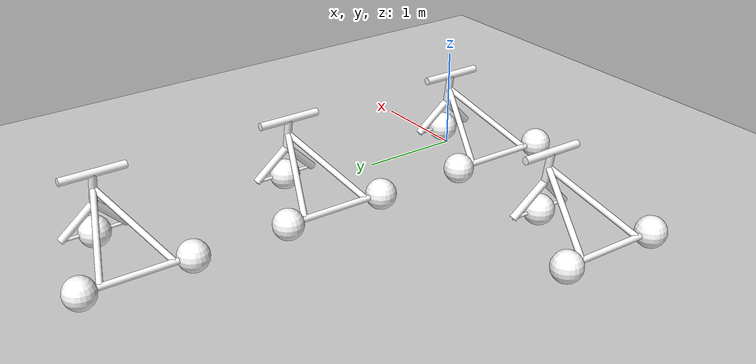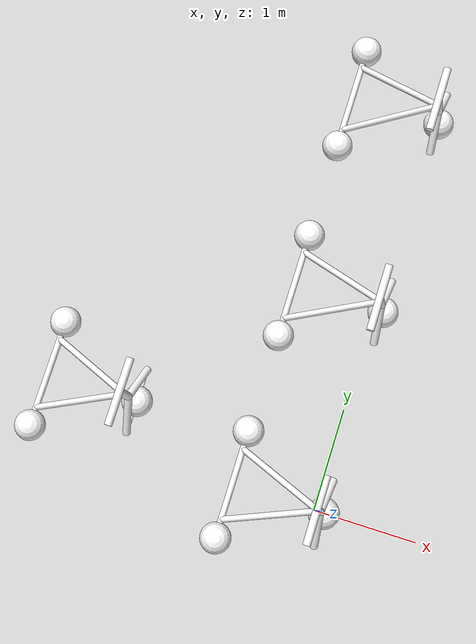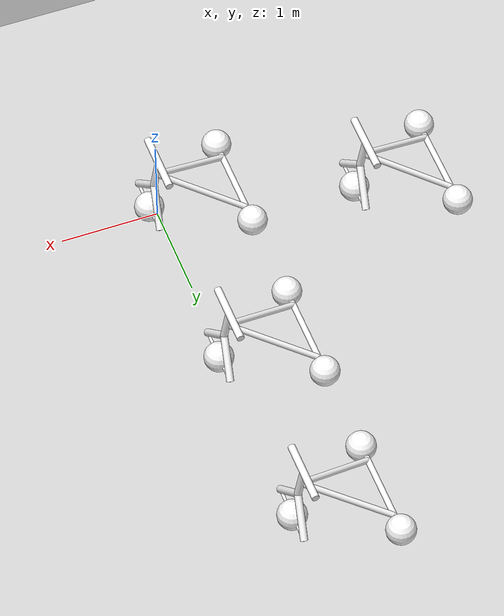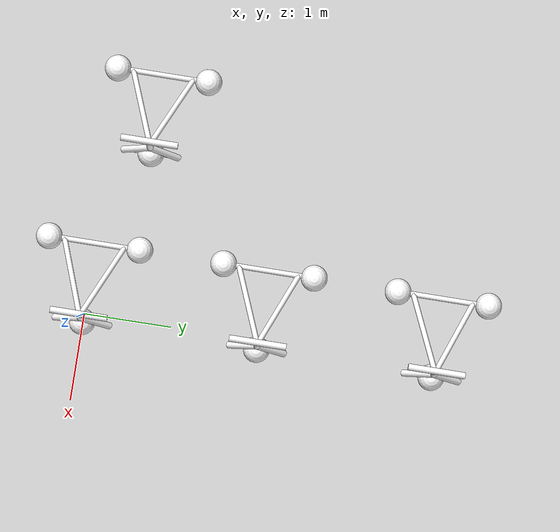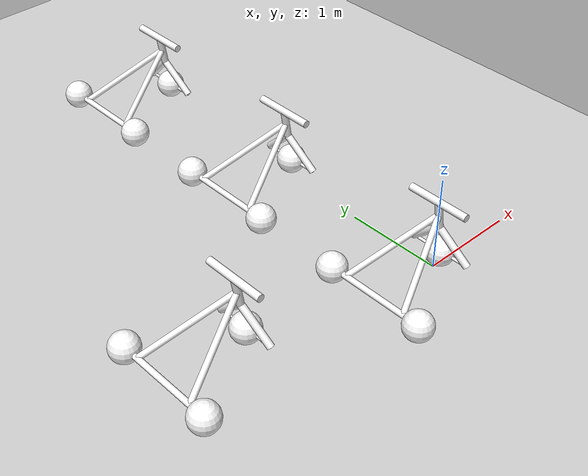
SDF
<?xml version="1.0" ?>

<sdf version="1.6">
  <world name="default">
    <gravity>-2 0 -9.8</gravity>

    <include>
      <uri>model://ground_plane</uri>
    </include>
    <include>
      <uri>model://sun</uri>
    </include>

    <include>
      <uri>model://trisphere_cycle</uri>
      <name>trisphere_cycle_slip0</name>
      <pose>0 0 0  0 0 0</pose>
      <plugin name="wheel_slip" filename="libWheelSlipPlugin.so">
        <wheel link_name="wheel_front">
          <slip_compliance_lateral>0</slip_compliance_lateral>
          <slip_compliance_longitudinal>0</slip_compliance_longitudinal>
          <wheel_normal_force>77</wheel_normal_force>
        </wheel>
        <wheel link_name="wheel_rear_left">
          <slip_compliance_lateral>0</slip_compliance_lateral>
          <slip_compliance_longitudinal>0</slip_compliance_longitudinal>
          <wheel_normal_force>32</wheel_normal_force>
        </wheel>
        <wheel link_name="wheel_rear_right">
          <slip_compliance_lateral>0</slip_compliance_lateral>
          <slip_compliance_longitudinal>0</slip_compliance_longitudinal>
          <wheel_normal_force>32</wheel_normal_force>
        </wheel>
      </plugin>
      <plugin name="joint_control" filename="libJointControlPlugin.so">
        <controller type="position">
          <joint>wheel_front_steer</joint>
          <target>0</target>
          <pid_gains>9 0 0.1</pid_gains>
        </controller>
        <controller type="velocity">
          <joint>wheel_rear_left_spin</joint>
          <joint>wheel_rear_right_spin</joint>
          <target>6.0</target>
          <pid_gains>9 0 0</pid_gains>
        </controller>
        <controller type="force">
          <joint>wheel_rear_left_spin</joint>
          <joint>wheel_rear_right_spin</joint>
          <target>2.15</target>
        </controller>
      </plugin>
    </include>

    <include>
      <uri>model://trisphere_cycle</uri>
      <name>trisphere_cycle_spatial_slip0</name>
      <pose>-2 0.47 0 0  0 0 0</pose>
      <plugin name="wheel_slip" filename="libSpatialWheelSlipPlugin.so">
        <wheel link_name="wheel_front">
          <slip_compliance_lateral>0</slip_compliance_lateral>
          <slip_compliance_longitudinal>0</slip_compliance_longitudinal>
          <wheel_normal_force>77</wheel_normal_force>
        </wheel>
        <wheel link_name="wheel_rear_left">
          <slip_compliance_lateral>0</slip_compliance_lateral>
          <slip_compliance_longitudinal>0</slip_compliance_longitudinal>
          <wheel_normal_force>32</wheel_normal_force>
        </wheel>
        <wheel link_name="wheel_rear_right">
          <slip_compliance_lateral>0</slip_compliance_lateral>
          <slip_compliance_longitudinal>0</slip_compliance_longitudinal>
          <wheel_normal_force>32</wheel_normal_force>
        </wheel>
      </plugin>
      <plugin name="joint_control" filename="libJointControlPlugin.so">
        <controller type="position">
          <joint>wheel_front_steer</joint>
          <target>0</target>
          <pid_gains>9 0 0.1</pid_gains>
        </controller>
        <controller type="velocity">
          <joint>wheel_rear_left_spin</joint>
          <joint>wheel_rear_right_spin</joint>
          <target>6.0</target>
          <pid_gains>9 0 0</pid_gains>
        </controller>
        <controller type="force">
          <joint>wheel_rear_left_spin</joint>
          <joint>wheel_rear_right_spin</joint>
          <target>2.15</target>
        </controller>
      </plugin>
    </include>

    <include>
      <uri>model://trisphere_cycle</uri>
      <name>trisphere_cycle_slip1</name>
      <pose>0 2 0  0 0 0</pose>
      <plugin name="wheel_slip" filename="libWheelSlipPlugin.so">
        <wheel link_name="wheel_front">
          <slip_compliance_lateral>1</slip_compliance_lateral>
          <slip_compliance_longitudinal>1</slip_compliance_longitudinal>
          <wheel_normal_force>77</wheel_normal_force>
        </wheel>
        <wheel link_name="wheel_rear_left">
          <slip_compliance_lateral>1</slip_compliance_lateral>
          <slip_compliance_longitudinal>1</slip_compliance_longitudinal>
          <wheel_normal_force>32</wheel_normal_force>
        </wheel>
        <wheel link_name="wheel_rear_right">
          <slip_compliance_lateral>1</slip_compliance_lateral>
          <slip_compliance_longitudinal>1</slip_compliance_longitudinal>
          <wheel_normal_force>32</wheel_normal_force>
        </wheel>
      </plugin>
      <plugin name="joint_control" filename="libJointControlPlugin.so">
        <controller type="position">
          <joint>wheel_front_steer</joint>
          <target>0</target>
          <pid_gains>9 0 0.1</pid_gains>
        </controller>
        <controller type="velocity">
          <joint>wheel_rear_left_spin</joint>
          <joint>wheel_rear_right_spin</joint>
          <target>6.0</target>
          <pid_gains>9 0 0</pid_gains>
        </controller>
        <controller type="force">
          <joint>wheel_rear_left_spin</joint>
          <joint>wheel_rear_right_spin</joint>
          <target>2.15</target>
        </controller>
      </plugin>
    </include>

    <include>
      <uri>model://trisphere_cycle</uri>
      <name>trisphere_cycle_spatial_slip1</name>
      <pose>0 4 0  0 0 0</pose>
      <plugin name="wheel_slip" filename="libSpatialWheelSlipPlugin.so">
        <wheel link_name="wheel_front">
          <slip_compliance_lateral>1</slip_compliance_lateral>
          <slip_compliance_longitudinal>1</slip_compliance_longitudinal>
          <wheel_normal_force>77</wheel_normal_force>
        </wheel>
        <wheel link_name="wheel_rear_left">
          <slip_compliance_lateral>1</slip_compliance_lateral>
          <slip_compliance_longitudinal>1</slip_compliance_longitudinal>
          <wheel_normal_force>32</wheel_normal_force>
        </wheel>
        <wheel link_name="wheel_rear_right">
          <slip_compliance_lateral>1</slip_compliance_lateral>
          <slip_compliance_longitudinal>1</slip_compliance_longitudinal>
          <wheel_normal_force>32</wheel_normal_force>
        </wheel>
      </plugin>
      <plugin name="joint_control" filename="libJointControlPlugin.so">
        <controller type="position">
          <joint>wheel_front_steer</joint>
          <target>0</target>
          <pid_gains>9 0 0.1</pid_gains>
        </controller>
        <controller type="velocity">
          <joint>wheel_rear_left_spin</joint>
          <joint>wheel_rear_right_spin</joint>
          <target>6.0</target>
          <pid_gains>9 0 0</pid_gains>
        </controller>
        <controller type="force">
          <joint>wheel_rear_left_spin</joint>
          <joint>wheel_rear_right_spin</joint>
          <target>2.15</target>
        </controller>
      </plugin>
    </include>

    <gui fullscreen='0'>
      <camera name='user_camera'>
        <pose>1.5 -4 2.5  0 0.5 1.6</pose>
        <view_controller>orbit</view_controller>
      </camera>
    </gui>
  </world>
</sdf>

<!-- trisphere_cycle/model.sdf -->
<sdf version="1.6">
  <model name="trisphere_cycle">
    <link name="frame">
      <pose>-0.40855911616047164 0 0.38502293110800634  0 -0.522020852957719 0</pose>
      <inertial>
        <pose>0.0 0 0  0 0 0</pose>
        <mass>10</mass>
        <inertia>
          <ixx>0.22799999999999998</ixx>
          <iyy>0.7435210984814149</iyy>
          <izz>0.9655210984814149</izz>
          <ixy>0</ixy>
          <ixz>0</ixz>
          <iyz>0</iyz>
        </inertia>
      </inertial>
      <collision name="axle_collision">
        <pose>-0.4713346258704366 0 0  1.5707963267948966 0 0</pose>
        <geometry>
          <cylinder>
            <length>1.0392304845413263</length>
            <radius>0.03</radius>
          </cylinder>
        </geometry>
      </collision>
      <visual name="axle_visual">
        <pose>-0.4713346258704366 0 0  1.5707963267948966 0 0</pose>
        <geometry>
          <cylinder>
            <length>1.0392304845413263</length>
            <radius>0.03</radius>
          </cylinder>
        </geometry>
        <material><diffuse>1 1 1 1</diffuse><specular>0.1 0.1 0.1 1</specular></material>
      </visual>
      <collision name="frame_left_collision">
        <pose>0 0.17155177419583564 0  0 1.5707963267948966 -0.3490658503988659</pose>
        <geometry>
          <cylinder>
            <length>1.0031676644991372</length>
            <radius>0.03</radius>
          </cylinder>
        </geometry>
      </collision>
      <visual name="frame_left_visual">
        <pose>0 0.17155177419583564 0  0 1.5707963267948966 -0.3490658503988659</pose>
        <geometry>
          <cylinder>
            <length>1.0031676644991372</length>
            <radius>0.03</radius>
          </cylinder>
        </geometry>
        <material><diffuse>1 1 1 1</diffuse><specular>0.1 0.1 0.1 1</specular></material>
      </visual>
      <collision name="frame_right_collision">
        <pose>0 -0.17155177419583564 0  0 1.5707963267948966 0.3490658503988659</pose>
        <geometry>
          <cylinder>
            <length>1.0031676644991372</length>
            <radius>0.03</radius>
          </cylinder>
        </geometry>
      </collision>
      <visual name="frame_right_visual">
        <pose>0 -0.17155177419583564 0  0 1.5707963267948966 0.3490658503988659</pose>
        <geometry>
          <cylinder>
            <length>1.0031676644991372</length>
            <radius>0.03</radius>
          </cylinder>
        </geometry>
        <material><diffuse>1 1 1 1</diffuse><specular>0.1 0.1 0.1 1</specular></material>
      </visual>
    </link>
    <link name="fork">
      <pose>0.04144088383952833 0 0.38502293110800634  0 -0.17453292519943295 0</pose>
      <inertial>
        <mass>3</mass>
        <inertia>
          <ixx>0.15820312499999997</ixx>
          <iyy>0.058359374999999984</iyy>
          <izz>0.10265624999999999</izz>
          <ixy>0</ixy>
          <ixz>0</ixz>
          <iyz>0</iyz>
        </inertia>
      </inertial>
      <collision name="handlebars_collision">
        <pose>0 0 0.397747564417433  1.5707963267948966 0 0</pose>
        <geometry>
          <cylinder>
            <length>0.6363961030678927</length>
            <radius>0.0375</radius>
          </cylinder>
        </geometry>
      </collision>
      <visual name="handlebars_visual">
        <pose>0 0 0.397747564417433  1.5707963267948966 0 0</pose>
        <geometry>
          <cylinder>
            <length>0.6363961030678927</length>
            <radius>0.0375</radius>
          </cylinder>
        </geometry>
        <material><diffuse>1 1 1 1</diffuse><specular>0.1 0.1 0.1 1</specular></material>
      </visual>
      <collision name="headtube_collision">
        <pose>0 0 0.2386485386504598  0 0 0</pose>
        <geometry>
          <cylinder>
            <length>0.31819805153394637</length>
            <radius>0.0375</radius>
          </cylinder>
        </geometry>
      </collision>
      <visual name="headtube_visual">
        <pose>0 0 0.2386485386504598  0 0 0</pose>
        <geometry>
          <cylinder>
            <length>0.31819805153394637</length>
            <radius>0.0375</radius>
          </cylinder>
        </geometry>
        <material><diffuse>1 1 1 1</diffuse><specular>0.1 0.1 0.1 1</specular></material>
      </visual>
      <collision name="spindle_collision">
        <pose>0 0 -0.23864853865045976  1.5707963267948966 0 0</pose>
        <geometry>
          <cylinder>
            <length>0.6363961030678927</length>
            <radius>0.015</radius>
          </cylinder>
        </geometry>
      </collision>
      <visual name="spindle_visual">
        <pose>0 0 -0.23864853865045976  1.5707963267948966 0 0</pose>
        <geometry>
          <cylinder>
            <length>0.6363961030678927</length>
            <radius>0.015</radius>
          </cylinder>
        </geometry>
        <material><diffuse>1 1 1 1</diffuse><specular>0.1 0.1 0.1 1</specular></material>
      </visual>
      <collision name="fork_left_collision">
        <pose>0 0.15909902576697318 -0.07954951288348658  0.7853981633974483 0 0</pose>
        <geometry>
          <cylinder>
            <length>0.45</length>
            <radius>0.0375</radius>
          </cylinder>
        </geometry>
      </collision>
      <visual name="fork_left_visual">
        <pose>0 0.15909902576697318 -0.07954951288348658  0.7853981633974483 0 0</pose>
        <geometry>
          <cylinder>
            <length>0.45</length>
            <radius>0.0375</radius>
          </cylinder>
        </geometry>
        <material><diffuse>1 1 1 1</diffuse><specular>0.1 0.1 0.1 1</specular></material>
      </visual>
      <collision name="fork_right_collision">
        <pose>0 -0.15909902576697318 -0.07954951288348658  -0.7853981633974483 0 0</pose>
        <geometry>
          <cylinder>
            <length>0.45</length>
            <radius>0.0375</radius>
          </cylinder>
        </geometry>
      </collision>
      <visual name="fork_right_visual">
        <pose>0 -0.15909902576697318 -0.07954951288348658  -0.7853981633974483 0 0</pose>
        <geometry>
          <cylinder>
            <length>0.45</length>
            <radius>0.0375</radius>
          </cylinder>
        </geometry>
        <material><diffuse>1 1 1 1</diffuse><specular>0.1 0.1 0.1 1</specular></material>
      </visual>
    </link>
    <link name="wheel_front">
      <pose>0.08288176767905665 0 0.15  0 0 0</pose>
      <inertial>
        <mass>0.5</mass>
        <inertia>
          <ixx>0.0045</ixx>
          <iyy>0.0045</iyy>
          <izz>0.0045</izz>
          <ixy>0</ixy>
          <ixz>0</ixz>
          <iyz>0</iyz>
        </inertia>
      </inertial>
      <collision name="collision">
        <geometry>
          <sphere>
            <radius>0.15</radius>
          </sphere>
        </geometry>
        <surface>
          <contact>
            <ode>
              <kp>100000000.0</kp>
              <kd>1</kd>
              <min_depth>0.0005</min_depth>
            </ode>
          </contact>
        </surface>
      </collision>
      <visual name="visual">
        <geometry>
          <sphere>
            <radius>0.15</radius>
          </sphere>
        </geometry>
        <material><diffuse>1 1 1 1</diffuse><specular>0.1 0.1 0.1 1</specular></material>
      </visual>
    </link>
    <joint name="wheel_front_steer" type="revolute">
      <parent>frame</parent>
      <child>fork</child>
      <axis>
        <xyz>0 0 1</xyz>
        <limit>
          <lower>-0.9599310885968813</lower>
          <upper>0.9599310885968813</upper>
        </limit>
      </axis>
    </joint>
    <joint name="wheel_front_spin" type="revolute">
      <parent>fork</parent>
      <child>wheel_front</child>
      <axis>
        <xyz>0 1 0</xyz>
      </axis>
    </joint>
    <link name="wheel_rear_left">
      <pose>-0.8171182323209433 0.5196152422706631 0.15  0 0 0</pose>
      <inertial>
        <mass>0.5</mass>
        <inertia>
          <ixx>0.0045</ixx>
          <iyy>0.0045</iyy>
          <izz>0.0045</izz>
          <ixy>0</ixy>
          <ixz>0</ixz>
          <iyz>0</iyz>
        </inertia>
      </inertial>
      <collision name="collision">
        <geometry>
          <sphere>
            <radius>0.15</radius>
          </sphere>
        </geometry>
        <surface>
          <contact>
            <ode>
              <kp>100000000.0</kp>
              <kd>1</kd>
              <min_depth>0.0005</min_depth>
            </ode>
          </contact>
        </surface>
      </collision>
      <visual name="visual">
        <geometry>
          <sphere>
            <radius>0.15</radius>
          </sphere>
        </geometry>
        <material><diffuse>1 1 1 1</diffuse><specular>0.1 0.1 0.1 1</specular></material>
      </visual>
    </link>
    <joint name="wheel_rear_left_spin" type="revolute">
      <parent>frame</parent>
      <child>wheel_rear_left</child>
      <axis>
        <xyz>0 1 0</xyz>
      </axis>
    </joint>
    <link name="wheel_rear_right">
      <pose>-0.8171182323209433 -0.5196152422706631 0.15  0 0 0</pose>
      <inertial>
        <mass>0.5</mass>
        <inertia>
          <ixx>0.0045</ixx>
          <iyy>0.0045</iyy>
          <izz>0.0045</izz>
          <ixy>0</ixy>
          <ixz>0</ixz>
          <iyz>0</iyz>
        </inertia>
      </inertial>
      <collision name="collision">
        <geometry>
          <sphere>
            <radius>0.15</radius>
          </sphere>
        </geometry>
        <surface>
          <contact>
            <ode>
              <kp>100000000.0</kp>
              <kd>1</kd>
              <min_depth>0.0005</min_depth>
            </ode>
          </contact>
        </surface>
      </collision>
      <visual name="visual">
        <geometry>
          <sphere>
            <radius>0.15</radius>
          </sphere>
        </geometry>
        <material><diffuse>1 1 1 1</diffuse><specular>0.1 0.1 0.1 1</specular></material>
      </visual>
    </link>
    <joint name="wheel_rear_right_spin" type="revolute">
      <parent>frame</parent>
      <child>wheel_rear_right</child>
      <axis>
        <xyz>0 1 0</xyz>
      </axis>
    </joint>
  </model>
</sdf>
